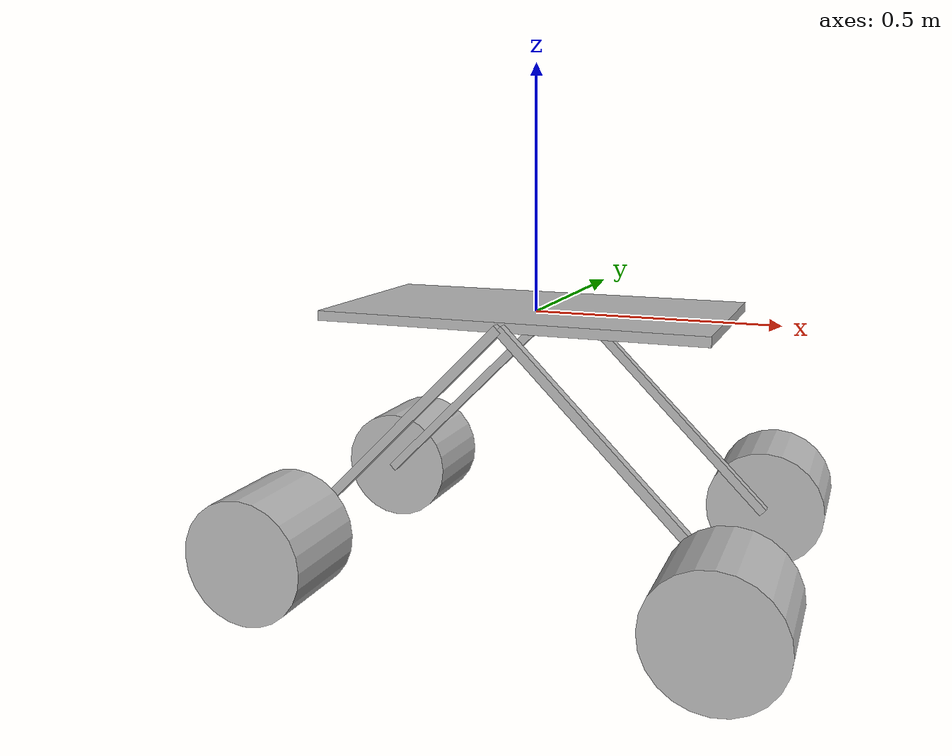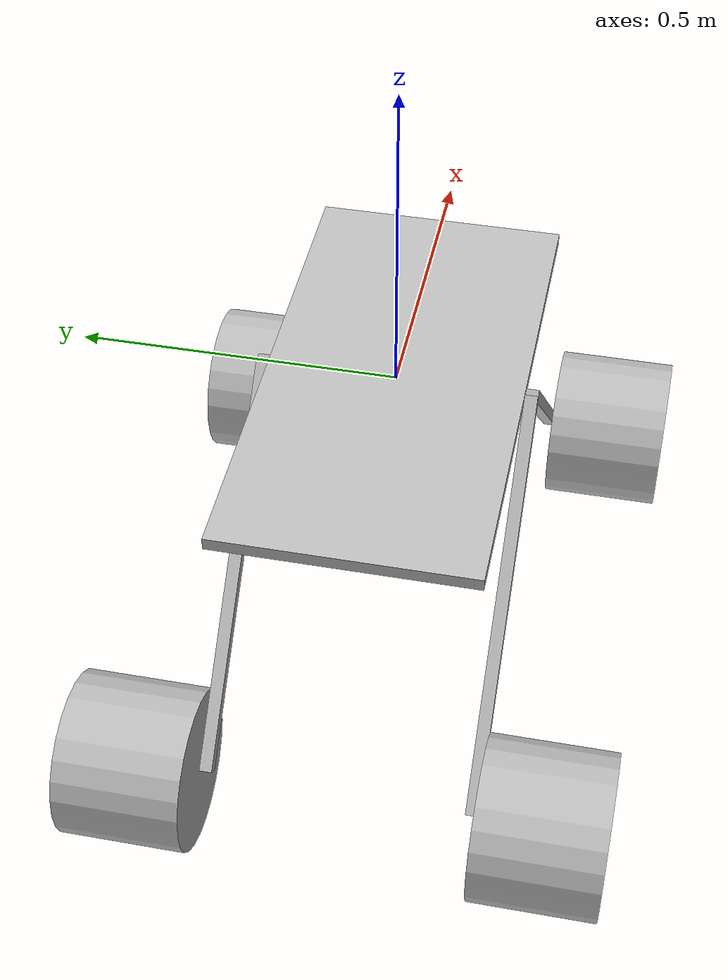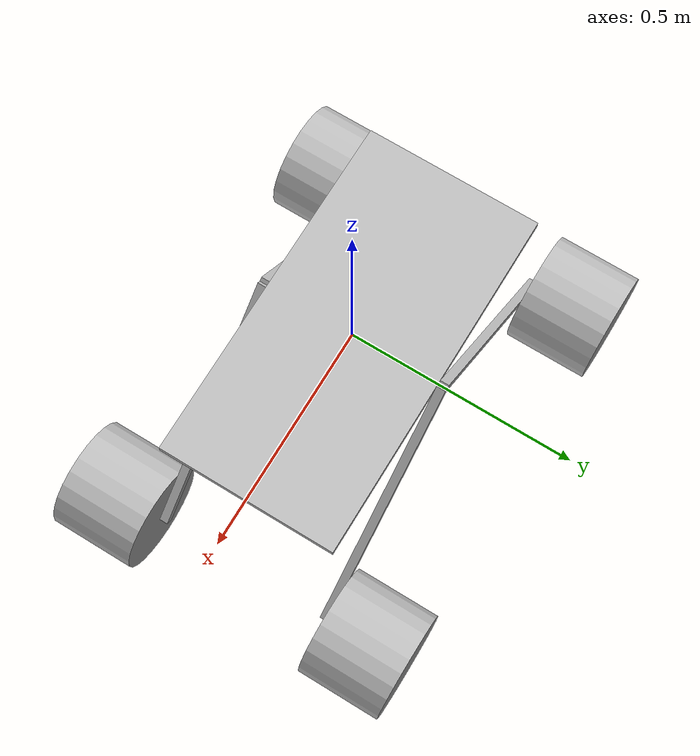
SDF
<sdf version='1.7'>
  <model name='rover_primal'>
    <link name='frame'>
      <inertial>
        <pose>0 0 0 0 -0 0</pose>
        <mass>10.919</mass>
        <inertia>
          <ixx>0.146</ixx>
          <ixy>0</ixy>
          <ixz>0</ixz>
          <iyy>0.5827</iyy>
          <iyz>0</iyz>
          <izz>0.727</izz>
        </inertia>
      </inertial>
      <collision name='frame_collision'>
        <pose>0 0 0 0 -0 0</pose>
        <geometry>
          <box>
            <size>0.8 0.4 0.02</size>
          </box>
        </geometry>
        <surface>
          <contact>
            <ode>
              <kp>100000</kp>
              <kd>1</kd>
            </ode>
          </contact>
          <friction>
            <ode>
              <mu>0.8</mu>
              <mu2>0.8</mu2>
            </ode>
          </friction>
        </surface>
      </collision>
      <visual name='frame_visual'>
        <pose>0 0 0 0 -0 0</pose>
        <geometry>
          <box>
            <size>0.8 0.4 0.02</size>
          </box>
        </geometry>
      </visual>
      <min_depth>0.0010</min_depth>
    </link>
    <joint name='frame-imu' type='prismatic'>
      <pose relative_to='frame'>0 0 0.01 0 -0 0</pose>
      <parent>frame</parent>
      <child>imu_link</child>
      <axis>
        <xyz>0 0 1</xyz>
        <limit>
          <lower>0</lower>
          <upper>0</upper>
          <effort>0</effort>
          <velocity>0</velocity>
        </limit>
        <dynamics>
          <spring_reference>0</spring_reference>
          <spring_stiffness>0</spring_stiffness>
        </dynamics>
      </axis>
    </joint>
    <link name='imu_link'>
      <pose relative_to='frame-imu'>0 0 0 0 -0 0</pose>
      <inertial>
        <pose>0 0 0 0 -0 0</pose>
        <mass>0.001</mass>
        <inertia>
          <ixx>0.0001</ixx>
          <ixy>0</ixy>
          <ixz>0</ixz>
          <iyy>0.0001</iyy>
          <iyz>0</iyz>
          <izz>0.0001</izz>
        </inertia>
      </inertial>
      <sensor name='imu_sensor' type='imu'>
        <always_on>true</always_on>
        <update_rate>100</update_rate>
        <imu>
          <angular_velocity>
            <x><noise type="gaussian"><mean>0</mean><stddev>0.0002</stddev></noise></x>
            <y><noise type="gaussian"><mean>0</mean><stddev>0.0002</stddev></noise></y>
            <z><noise type="gaussian"><mean>0</mean><stddev>0.0002</stddev></noise></z>
          </angular_velocity>
          <linear_acceleration>
            <x><noise type="gaussian"><mean>0</mean><stddev>0.017</stddev></noise></x>
            <y><noise type="gaussian"><mean>0</mean><stddev>0.017</stddev></noise></y>
            <z><noise type="gaussian"><mean>0</mean><stddev>0.017</stddev></noise></z>
          </linear_acceleration>
        </imu>
      </sensor>

    </link>
    <joint name='frame-sus-bar-fleft' type='revolute'>
      <pose relative_to='frame'>0 0.21 0 0 0.78553 0</pose>
      <parent>frame</parent>
      <child>suspension-bar-fleft</child>
      <axis>
        <xyz>0 1 0</xyz>
        <limit>
          <lower>-1e+16</lower>
          <upper>1e+16</upper>
        </limit>
        <dynamics>
          <spring_reference>0</spring_reference>
          <spring_stiffness>0</spring_stiffness>
        </dynamics>
      </axis>
    </joint>
    <link name='suspension-bar-fleft'>
      <pose relative_to='frame-sus-bar-fleft'>0 0 0 0 -0 0</pose>
      <inertial>
        <pose>0 0 0 0 -0 0</pose>
        <mass>1.4</mass>
        <inertia>
          <ixx>0.110207</ixx>
          <ixy>0</ixy>
          <ixz>6.7425e-18</ixz>
          <iyy>0.22032</iyy>
          <iyz>0</iyz>
          <izz>0.110207</izz>
        </inertia>
      </inertial>
      <collision name='suspension-bar-fleft_collision'>
        <pose>0.3233 0 0 0 -0 0</pose>
        <geometry>
          <box>
            <size>0.6466 0.02 0.02</size>
          </box>
        </geometry>
        <surface>
          <contact>
            <ode>
              <kp>100000</kp>
              <kd>1</kd>
            </ode>
          </contact>
          <friction>
            <ode>
              <mu>0.8</mu>
              <mu2>0.8</mu2>
            </ode>
          </friction>
        </surface>
      </collision>
      <collision name='suspension-bar-fleft_fixed_joint_lump__suspension-bar-bleft_collision_1'>
        <pose>1e-06 0 -0.3233 0 -1.5708 0</pose>
        <geometry>
          <box>
            <size>0.6466 0.02 0.02</size>
          </box>
        </geometry>
        <surface>
          <contact>
            <ode>
              <kp>100000</kp>
              <kd>1</kd>
            </ode>
          </contact>
          <friction>
            <ode>
              <mu>0.8</mu>
              <mu2>0.8</mu2>
            </ode>
          </friction>
        </surface>
      </collision>
      <visual name='suspension-bar-fleft_visual'>
        <pose>0.3233 0 0 0 -0 0</pose>
        <geometry>
          <box>
            <size>0.6466 0.02 0.02</size>
          </box>
        </geometry>
      </visual>
      <visual name='suspension-bar-fleft_fixed_joint_lump__suspension-bar-bleft_visual_1'>
        <pose>1e-06 0 -0.3233 0 -1.5708 0</pose>
        <geometry>
          <box>
            <size>0.6466 0.02 0.02</size>
          </box>
        </geometry>
      </visual>
      <min_depth>0.0010</min_depth>
      <min_depth>0.0010</min_depth>
    </link>
    <joint name='sus-bar-fleft-blwheel' type='revolute'>
      <pose relative_to='suspension-bar-fleft'>2e-06 0.11 -0.6466 3.14159 -1.57079 3.14159</pose>
      <parent>suspension-bar-fleft</parent>
      <child>back-left-wheel</child>
      <axis>
        <xyz>0 1 0</xyz>
        <limit>
          <lower>-1e+16</lower>
          <upper>1e+16</upper>
        </limit>
        <dynamics>
          <spring_reference>0</spring_reference>
          <spring_stiffness>0</spring_stiffness>
        </dynamics>
      </axis>
    </joint>
    <link name='back-left-wheel'>
      <pose relative_to='sus-bar-fleft-blwheel'>0 0 0 0 -0 0</pose>
      <inertial>
        <pose>0 0 0 0 -0 0</pose>
        <mass>2.003</mass>
        <inertia>
          <ixx>0.015139</ixx>
          <ixy>0</ixy>
          <ixz>0</ixz>
          <iyy>0.016925</iyy>
          <iyz>0</iyz>
          <izz>0.015139</izz>
        </inertia>
      </inertial>
      <collision name='back-left-wheel_collision'>
        <pose>0 0 0 1.5708 -0 0</pose>
        <geometry>
          <cylinder>
            <length>0.2</length>
            <radius>0.13</radius>
          </cylinder>
        </geometry>
        <surface>
          <contact>
            <ode>
              <kp>1e+07</kp>
              <kd>1</kd>
            </ode>
          </contact>
          <friction>
            <ode>
              <mu>0.8</mu>
              <mu2>0.8</mu2>
            </ode>
          </friction>
        </surface>
      </collision>
      <visual name='back-left-wheel_visual'>
        <pose>0 0 0 1.5708 -0 0</pose>
        <geometry>
          <cylinder>
            <length>0.2</length>
            <radius>0.13</radius>
          </cylinder>
        </geometry>
      </visual>
      <min_depth>0.001</min_depth>
    </link>
    <joint name='sus-bar-fleft-flwheel' type='revolute'>
      <pose relative_to='suspension-bar-fleft'>0.6466 0.11 0 0 -0 0</pose>
      <parent>suspension-bar-fleft</parent>
      <child>front-left-wheel</child>
      <axis>
        <xyz>0 1 0</xyz>
        <limit>
          <lower>-1e+16</lower>
          <upper>1e+16</upper>
        </limit>
        <dynamics>
          <spring_reference>0</spring_reference>
          <spring_stiffness>0</spring_stiffness>
        </dynamics>
      </axis>
    </joint>
    <link name='front-left-wheel'>
      <pose relative_to='sus-bar-fleft-flwheel'>0 0 0 0 -0 0</pose>
      <inertial>
        <pose>0 0 0 0 -0 0</pose>
        <mass>2.003</mass>
        <inertia>
          <ixx>0.015139</ixx>
          <ixy>0</ixy>
          <ixz>0</ixz>
          <iyy>0.016925</iyy>
          <iyz>0</iyz>
          <izz>0.015139</izz>
        </inertia>
      </inertial>
      <collision name='front-left-wheel_collision'>
        <pose>0 0 0 1.5708 -0 0</pose>
        <geometry>
          <cylinder>
            <length>0.2</length>
            <radius>0.13</radius>
          </cylinder>
        </geometry>
        <surface>
          <contact>
            <ode>
              <kp>1e+07</kp>
              <kd>1</kd>
            </ode>
          </contact>
          <friction>
            <ode>
              <mu>0.8</mu>
              <mu2>0.8</mu2>
            </ode>
          </friction>
        </surface>
      </collision>
      <visual name='front-left-wheel_visual'>
        <pose>0 0 0 1.5708 -0 0</pose>
        <geometry>
          <cylinder>
            <length>0.2</length>
            <radius>0.13</radius>
          </cylinder>
        </geometry>
      </visual>
      <min_depth>0.001</min_depth>
    </link>
    <joint name='frame-sus-bar-fright' type='revolute'>
      <pose relative_to='frame'>0 -0.21 0 0 0.78553 0</pose>
      <parent>frame</parent>
      <child>suspension-bar-fright</child>
      <axis>
        <xyz>0 1 0</xyz>
        <limit>
          <lower>-1e+16</lower>
          <upper>1e+16</upper>
        </limit>
        <dynamics>
          <spring_reference>0</spring_reference>
          <spring_stiffness>0</spring_stiffness>
        </dynamics>
      </axis>
    </joint>
    <link name='suspension-bar-fright'>
      <pose relative_to='frame-sus-bar-fright'>0 0 0 0 -0 0</pose>
      <inertial>
        <pose>0 0 0 0 -0 0</pose>
        <mass>1.4</mass>
        <inertia>
          <ixx>0.110207</ixx>
          <ixy>0</ixy>
          <ixz>6.7425e-18</ixz>
          <iyy>0.22032</iyy>
          <iyz>0</iyz>
          <izz>0.110207</izz>
        </inertia>
      </inertial>
      <collision name='suspension-bar-fright_collision'>
        <pose>0.3233 0 0 0 -0 0</pose>
        <geometry>
          <box>
            <size>0.6466 0.02 0.02</size>
          </box>
        </geometry>
        <surface>
          <contact>
            <ode>
              <kp>100000</kp>
              <kd>1</kd>
            </ode>
          </contact>
          <friction>
            <ode>
              <mu>0.8</mu>
              <mu2>0.8</mu2>
            </ode>
          </friction>
        </surface>
      </collision>
      <collision name='suspension-bar-fright_fixed_joint_lump__suspension-bar-bright_collision_1'>
        <pose>1e-06 0 -0.3233 0 -1.5708 0</pose>
        <geometry>
          <box>
            <size>0.6466 0.02 0.02</size>
          </box>
        </geometry>
        <surface>
          <contact>
            <ode>
              <kp>100000</kp>
              <kd>1</kd>
            </ode>
          </contact>
          <friction>
            <ode>
              <mu>0.8</mu>
              <mu2>0.8</mu2>
            </ode>
          </friction>
        </surface>
      </collision>
      <visual name='suspension-bar-fright_visual'>
        <pose>0.3233 0 0 0 -0 0</pose>
        <geometry>
          <box>
            <size>0.6466 0.02 0.02</size>
          </box>
        </geometry>
      </visual>
      <visual name='suspension-bar-fright_fixed_joint_lump__suspension-bar-bright_visual_1'>
        <pose>1e-06 0 -0.3233 0 -1.5708 0</pose>
        <geometry>
          <box>
            <size>0.6466 0.02 0.02</size>
          </box>
        </geometry>
      </visual>
      <min_depth>0.0010</min_depth>
      <min_depth>0.001</min_depth>
    </link>
    <joint name='sus-bar-fright-brwheel' type='revolute'>
      <pose relative_to='suspension-bar-fright'>2e-06 -0.11 -0.6466 3.14159 -1.57079 3.14159</pose>
      <parent>suspension-bar-fright</parent>
      <child>back-right-wheel</child>
      <axis>
        <xyz>0 1 0</xyz>
        <limit>
          <lower>-1e+16</lower>
          <upper>1e+16</upper>
        </limit>
        <dynamics>
          <spring_reference>0</spring_reference>
          <spring_stiffness>0</spring_stiffness>
        </dynamics>
      </axis>
    </joint>
    <link name='back-right-wheel'>
      <pose relative_to='sus-bar-fright-brwheel'>0 0 0 0 -0 0</pose>
      <inertial>
        <pose>0 0 0 0 -0 0</pose>
        <mass>2.003</mass>
        <inertia>
          <ixx>0.015139</ixx>
          <ixy>0</ixy>
          <ixz>0</ixz>
          <iyy>0.016925</iyy>
          <iyz>0</iyz>
          <izz>0.015139</izz>
        </inertia>
      </inertial>
      <collision name='back-right-wheel_collision'>
        <pose>0 0 0 1.5708 -0 0</pose>
        <geometry>
          <cylinder>
            <length>0.2</length>
            <radius>0.13</radius>
          </cylinder>
        </geometry>
        <surface>
          <contact>
            <ode>
              <kp>1e+07</kp>
              <kd>1</kd>
            </ode>
          </contact>
          <friction>
            <ode>
              <mu>0.8</mu>
              <mu2>0.8</mu2>
            </ode>
          </friction>
        </surface>
      </collision>
      <visual name='back-right-wheel_visual'>
        <pose>0 0 0 1.5708 -0 0</pose>
        <geometry>
          <cylinder>
            <length>0.2</length>
            <radius>0.13</radius>
          </cylinder>
        </geometry>
      </visual>
      <min_depth>0.001</min_depth>
    </link>
    <joint name='sus-bar-fright-frwheel' type='revolute'>
      <pose relative_to='suspension-bar-fright'>0.6466 -0.11 0 0 -0 0</pose>
      <parent>suspension-bar-fright</parent>
      <child>front-right-wheel</child>
      <axis>
        <xyz>0 1 0</xyz>
        <limit>
          <lower>-1e+16</lower>
          <upper>1e+16</upper>
        </limit>
        <dynamics>
          <spring_reference>0</spring_reference>
          <spring_stiffness>0</spring_stiffness>
        </dynamics>
      </axis>
    </joint>
    <link name='front-right-wheel'>
      <pose relative_to='sus-bar-fright-frwheel'>0 0 0 0 -0 0</pose>
      <inertial>
        <pose>0 0 0 0 -0 0</pose>
        <mass>2.003</mass>
        <inertia>
          <ixx>0.015139</ixx>
          <ixy>0</ixy>
          <ixz>0</ixz>
          <iyy>0.016925</iyy>
          <iyz>0</iyz>
          <izz>0.015139</izz>
        </inertia>
      </inertial>
      <collision name='front-right-wheel_collision'>
        <pose>0 0 0 1.5708 -0 0</pose>
        <geometry>
          <cylinder>
            <length>0.2</length>
            <radius>0.13</radius>
          </cylinder>
        </geometry>
        <surface>
          <contact>
            <ode>
              <kp>1e+07</kp>
              <kd>1</kd>
            </ode>
          </contact>
          <friction>
            <ode>
              <mu>0.8</mu>
              <mu2>0.8</mu2>
            </ode>
          </friction>
        </surface>
      </collision>
      <visual name='front-right-wheel_visual'>
        <pose>0 0 0 1.5708 -0 0</pose>
        <geometry>
          <cylinder>
            <length>0.2</length>
            <radius>0.13</radius>
          </cylinder>
        </geometry>
      </visual>
      <min_depth>0.001</min_depth>
    </link>
    <static>0</static>
    <plugin name='ardupilot_plugin' filename='libArduPilotPlugin.so'>
      <fdm_port_in>9002</fdm_port_in>
      <fdm_port_out>9003</fdm_port_out>
      <modelXYZToAirplaneXForwardZDown>0 0 0 3.141593 0 0</modelXYZToAirplaneXForwardZDown>
      <gazeboXYZToNED>0 0 0 3.141593 0 0</gazeboXYZToNED>
      <imuName>imu_sensor</imuName>
      <connectionTimeoutMaxCount>5</connectionTimeoutMaxCount>
      <control channel='0'>
        <type>VELOCITY</type>
        <jointName>sus-bar-fleft-flwheel</jointName>
        <multiplier>838</multiplier>
        <offset>0</offset>
        <servo_min>1100</servo_min>
        <servo_max>1900</servo_max>
        <p_gain>0.20</p_gain>
        <i_gain>0</i_gain>
        <d_gain>0</d_gain>
        <i_max>0</i_max>
        <i_min>0</i_min>
        <cmd_max>2.5</cmd_max>
        <cmd_min>-2.5</cmd_min>
      </control>
      <control channel='1'>
        <type>VELOCITY</type>
        <jointName>sus-bar-fleft-blwheel</jointName>
        <multiplier>838</multiplier>
        <offset>0</offset>
        <servo_min>1100</servo_min>
        <servo_max>1900</servo_max>
        <p_gain>0.20</p_gain>
        <i_gain>0</i_gain>
        <d_gain>0</d_gain>
        <i_max>0</i_max>
        <i_min>0</i_min>
        <cmd_max>2.5</cmd_max>
        <cmd_min>-2.5</cmd_min>
      </control>
      <control channel='2'>
        <type>VELOCITY</type>
        <jointName>sus-bar-fright-frwheel</jointName>
        <multiplier>838</multiplier>
        <offset>0</offset>
        <servo_min>1100</servo_min>
        <servo_max>1900</servo_max>
        <p_gain>0.20</p_gain>
        <i_gain>0</i_gain>
        <d_gain>0</d_gain>
        <i_max>0</i_max>
        <i_min>0</i_min>
        <cmd_max>2.5</cmd_max>
        <cmd_min>-2.5</cmd_min>
      </control>
      <control channel='3'>
        <type>VELOCITY</type>
        <jointName>sus-bar-fright-brwheel</jointName>
        <multiplier>838</multiplier>
        <offset>0</offset>
        <servo_min>1100</servo_min>
        <servo_max>1900</servo_max>
        <p_gain>0.20</p_gain>
        <i_gain>0</i_gain>
        <d_gain>0</d_gain>
        <i_max>0</i_max>
        <i_min>0</i_min>
        <cmd_max>2.5</cmd_max>
        <cmd_min>-2.5</cmd_min>
      </control>
    </plugin>
  </model>
</sdf>
